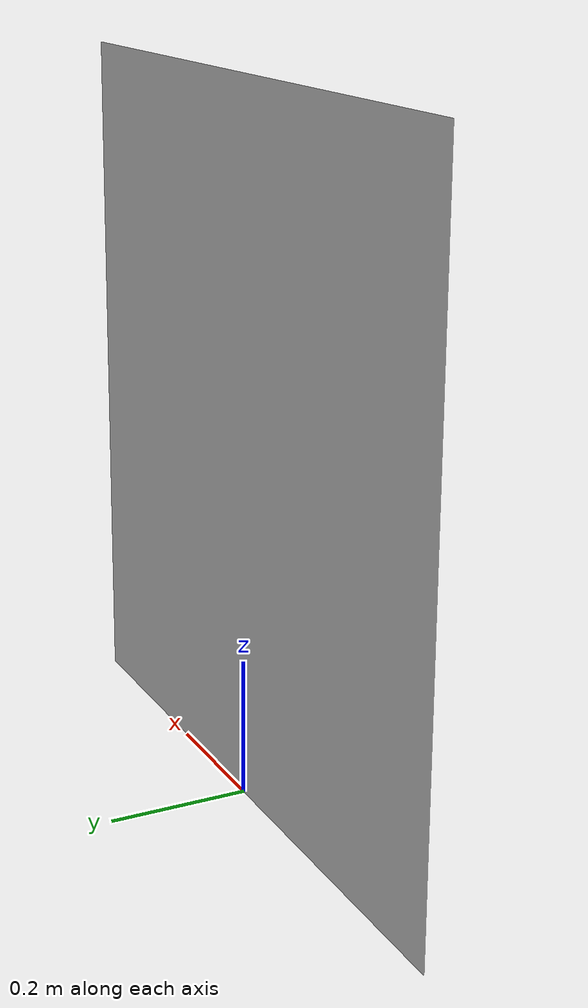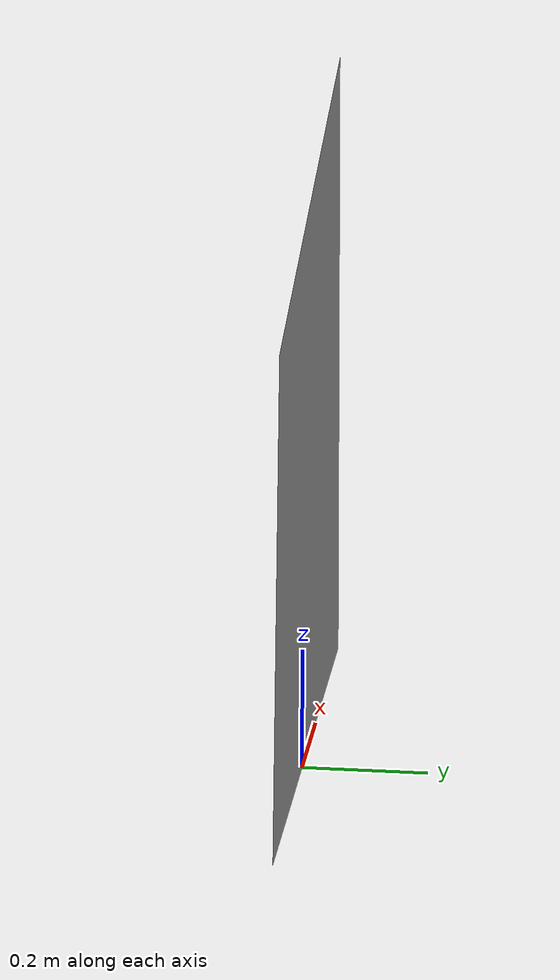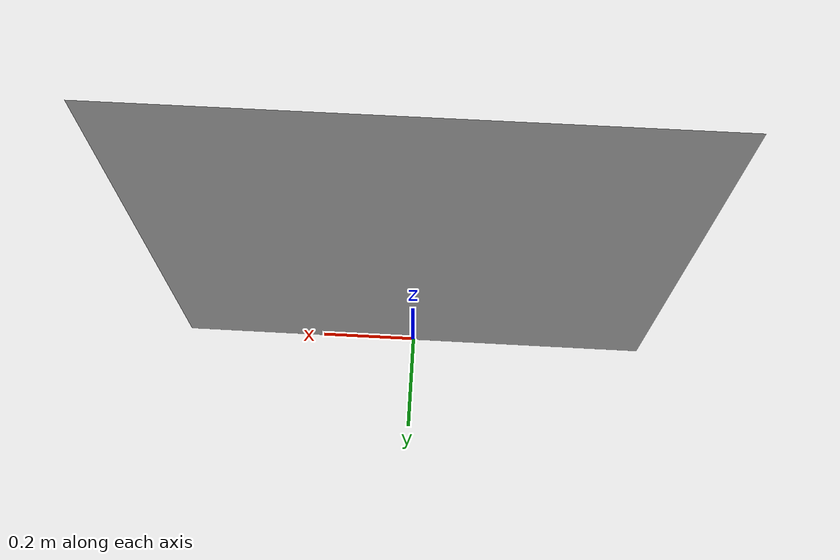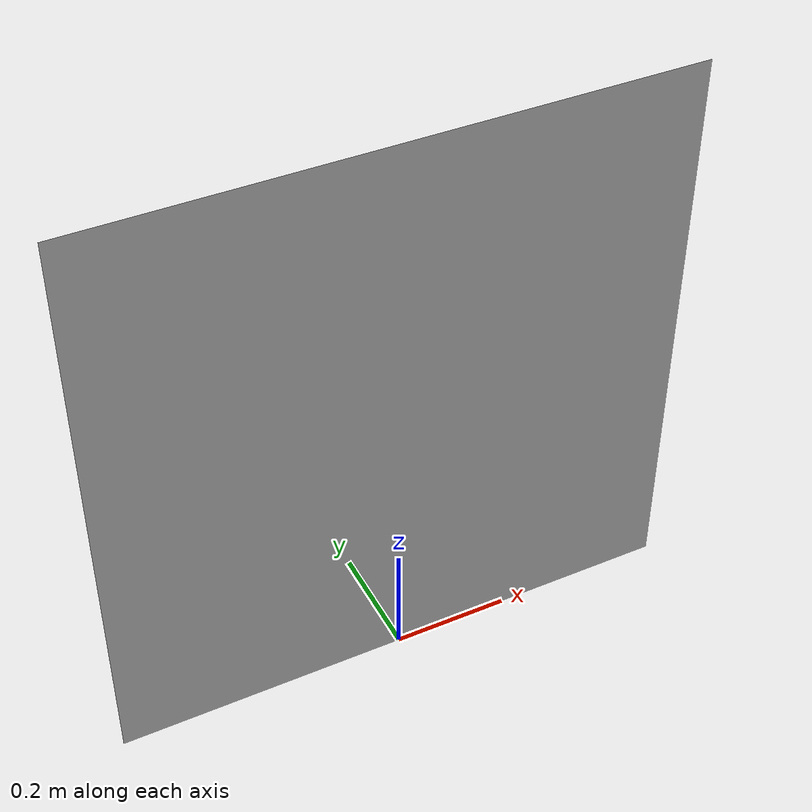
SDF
<?xml version='1.0'?>
<sdf version="1.4">
<model name="my_model">
  <pose>0 0 0.5 0 0 0</pose>
  <static>true</static>
    <link name="link">
      <inertial>
        <mass>1.0</mass>
        <inertia> <!-- interias are tricky to compute -->
          <!-- http://answers.gazebosim.org/question/4372/the-inertia-matrix-explained/ -->
          <ixx>0.083</ixx>       <!-- for a box: ixx = 0.083 * mass * (y*y + z*z) -->
          <ixy>0.0</ixy>         <!-- for a box: ixy = 0 -->
          <ixz>0.0</ixz>         <!-- for a box: ixz = 0 -->
          <iyy>0.0</iyy>       <!-- for a box: iyy = 0.083 * mass * (x*x + z*z) -->
          <iyz>0.0</iyz>         <!-- for a box: iyz = 0 -->
          <izz>0.083</izz>       <!-- for a box: izz = 0.083 * mass * (x*x + y*y) -->
        </inertia>
      </inertial>
      <visual name="visual">
        <geometry>
          <box>
            <size>1 0 1</size>
          </box>
        </geometry>
        <material>
                <script>
                    <uri>model://test/stereo_R.material</uri>
                    <name>streo_R/test</name>
                </script>
        </material>
      </visual>
    </link>
  </model>
</sdf>
